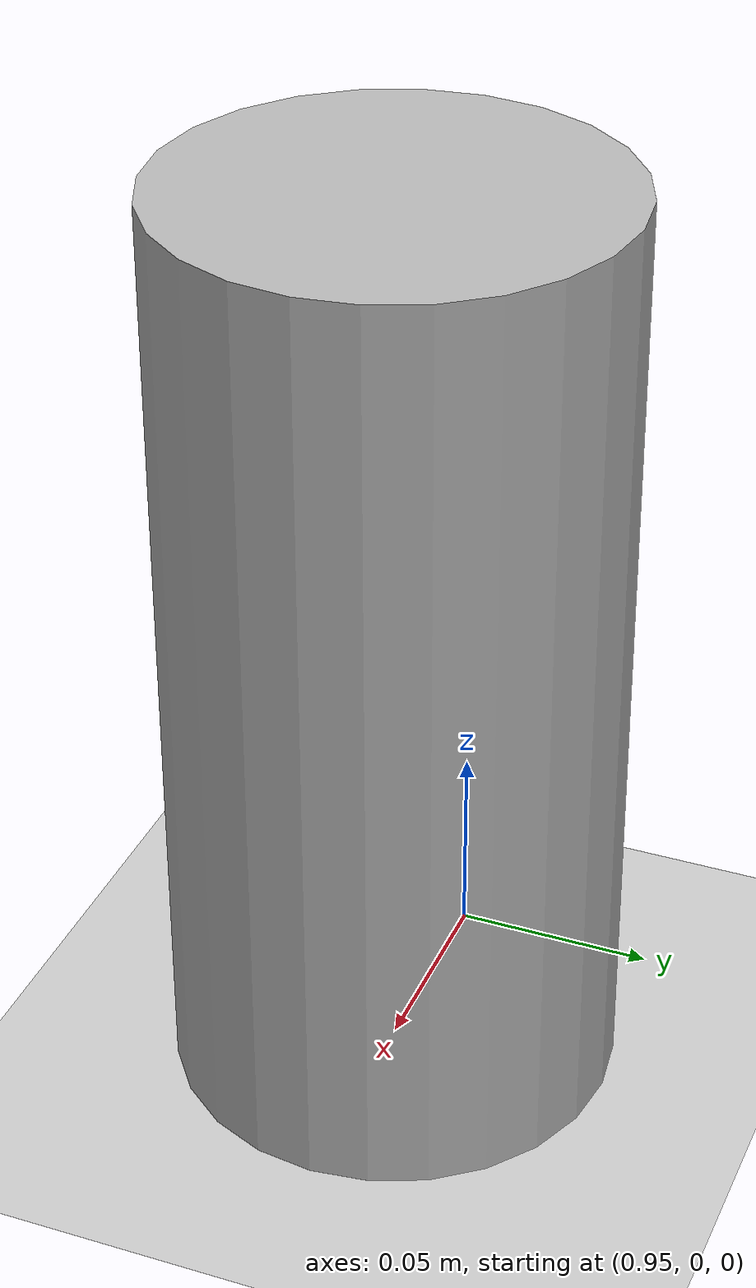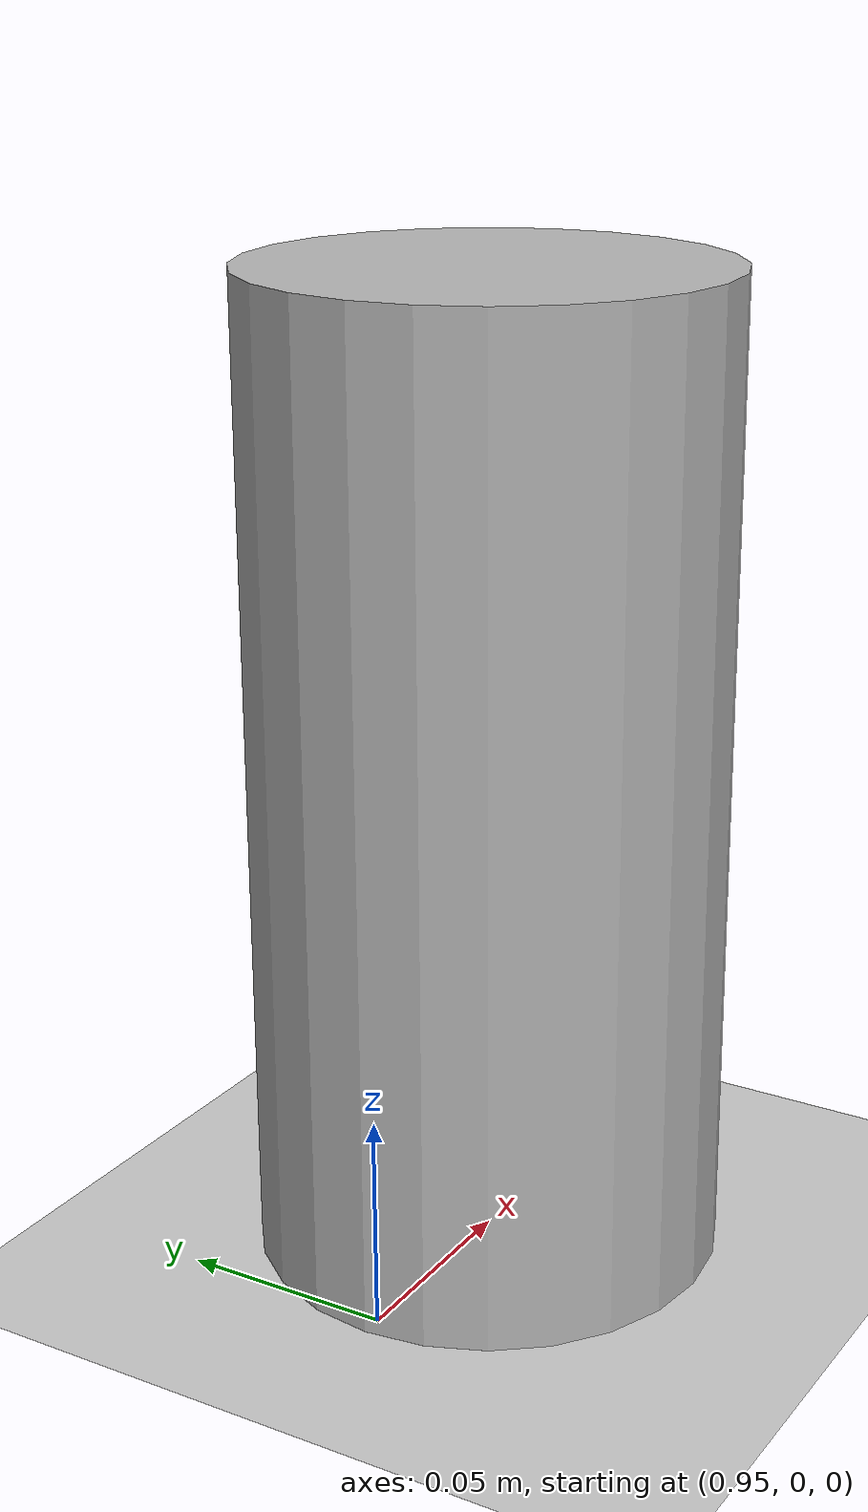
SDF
<?xml version="1.0" ?>
<sdf version="1.4">
  <!-- We use a custom world for the rrbot so that the camera angle is launched correctly -->

  <world name="default">

    <include>
      <uri>model://ground_plane</uri>
    </include>

    <include>
      <uri>model://beer</uri>
      <pose>1 0 0 0 0 0</pose>
    </include>

    <!-- Global light source -->
    <include>
      <uri>model://sun</uri>
    </include>

    <!-- Focus camera on tall pendulum -->
    <gui fullscreen='0'>
      <camera name='user_camera'>
        <pose>4.927360 -4.376610 3.740080 0.000000 0.275643 2.356190</pose>
        <view_controller>orbit</view_controller>
      </camera>
    </gui>

  </world>
</sdf>

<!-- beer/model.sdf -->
<sdf version="1.5">
  <model name="beer">
    <link name="link">
      <pose>0 0 0.115 0 0 0</pose>
      <inertial>
        <mass>0.390</mass>
        <inertia>
          <ixx>0.00058</ixx>
          <ixy>0</ixy>
          <ixz>0</ixz>
          <iyy>0.00058</iyy>
          <iyz>0</iyz>
          <izz>0.00019</izz>
        </inertia>
      </inertial>
      <collision name="collision">
        <geometry>
          <cylinder>
            <radius>0.055000</radius>
            <length>0.230000</length>
          </cylinder>
        </geometry>
      </collision>
      <visual name="visual">
        <geometry>
          <cylinder>
            <radius>0.055000</radius>
            <length>0.230000</length>
          </cylinder>
        </geometry>
        <material>
          <script>
            <uri>model://../model_source/models/beer/materials/scripts</uri>
            <uri>model://../model_source/models/beer/materials/textures</uri>
            <name>Beer/Diffuse</name>
          </script>
        </material>
      </visual>
    </link>
  </model>
</sdf>
